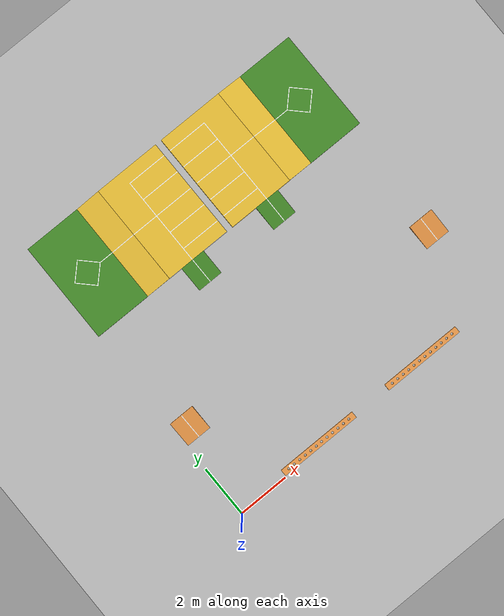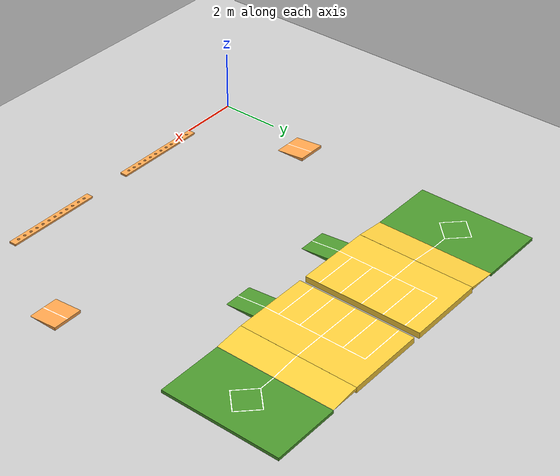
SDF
<sdf version="1.7">
 <world name="default">
  <light name="sun" type="directional">
   <pose>0 0 10 0 -0 0</pose>
   <diffuse>0.8 0.8 0.8 1</diffuse>
   <specular>0.2 0.2 0.2 1</specular>
   <attenuation>
    <range>1000</range>
    <constant>0.9</constant>
    <linear>0.01</linear>
    <quadratic>0.001</quadratic>
   </attenuation>
   <direction>-0.5 0.1 -0.9</direction>
   <spot><inner_angle>0</inner_angle><outer_angle>0</outer_angle><falloff>0</falloff></spot>
  </light>
  <model name="ground_plane">
   <static>1</static>
   <link name="link">
    <collision name="collision">
     <geometry><plane><normal>0 0 1</normal><size>100 100</size></plane></geometry>
     <surface>
      <contact><collide_bitmask>65535</collide_bitmask></contact>
      <friction><ode><mu>100</mu><mu2>50</mu2></ode></friction>
     </surface>
    </collision>
    <visual name="visual">
     <cast_shadows>0</cast_shadows>
     <geometry><plane><normal>0 0 1</normal><size>100 100</size></plane></geometry>
     <material>
      <script><uri>file://media/materials/scripts/gazebo.material</uri><name>Gazebo/Grey</name></script>
     </material>
    </visual>
   </link>
  </model>
  <gravity>0 0 -9.8</gravity>
  <magnetic_field>6e-06 2.3e-05 -4.2e-05</magnetic_field>
  <atmosphere type="adiabatic"/>
  <physics type="ode">
   <max_step_size>0.001</max_step_size>
   <real_time_factor>1</real_time_factor>
   <real_time_update_rate>1000</real_time_update_rate>
  </physics>
  <scene><ambient>0.4 0.4 0.4 1</ambient><background>0.7 0.7 0.7 1</background><shadows>1</shadows></scene>
  <audio><device>default</device></audio>
  <spherical_coordinates>
   <surface_model>EARTH_WGS84</surface_model>
   <latitude_deg>0</latitude_deg>
   <longitude_deg>0</longitude_deg>
   <elevation>0</elevation>
   <heading_deg>0</heading_deg>
  </spherical_coordinates>
  <model name="abu2024_mag">
   <pose>-0.730976 2.47798 0.01 0 -0 0</pose>
   <static>1</static>
   <link name="body">
    <visual name="visual">
     <geometry><mesh><uri>model://abu2024/abu2024_mag/meshes/mag.dae</uri></mesh></geometry>
    </visual>
    <collision name="collision">
     <geometry><mesh><uri>model://abu2024/abu2024_mag/meshes/mag.dae</uri></mesh></geometry>
    </collision>
   </link>
  </model>
  <model name="abu2024_mag_0">
   <pose>4.02034 2.47661 0 0 -0 0</pose>
   <static>1</static>
   <link name="body">
    <visual name="visual">
     <geometry><mesh><uri>model://abu2024/abu2024_mag/meshes/mag.dae</uri></mesh></geometry>
    </visual>
    <collision name="collision">
     <geometry><mesh><uri>model://abu2024/abu2024_mag/meshes/mag.dae</uri></mesh></geometry>
    </collision>
   </link>
  </model>
  <model name="abu2024_slope1">
   <pose>-1.39834 2.43172 0.01 0 -0 0</pose>
   <static>1</static>
   <link name="body">
    <visual name="visual">
     <geometry><mesh><uri>model://abu2024/abu2024_slope1/meshes/slope1.dae</uri></mesh></geometry>
    </visual>
    <collision name="collision">
     <geometry><mesh><uri>model://abu2024/abu2024_slope1/meshes/slope1.dae</uri></mesh></geometry>
    </collision>
   </link>
  </model>
  <model name="abu2024_slope1_0">
   <pose>9.60167 2.43062 0.01 0 -0 0</pose>
   <static>1</static>
   <link name="body">
    <visual name="visual">
     <geometry><mesh><uri>model://abu2024/abu2024_slope1/meshes/slope1.dae</uri></mesh></geometry>
    </visual>
    <collision name="collision">
     <geometry><mesh><uri>model://abu2024/abu2024_slope1/meshes/slope1.dae</uri></mesh></geometry>
    </collision>
   </link>
  </model>
  <model name="abu2024_slope2">
   <pose>2.40099 6.42879 0.11 0 -0 0</pose>
   <static>1</static>
   <link name="body">
    <visual name="visual">
     <geometry><mesh><uri>model://abu2024/abu2024_slope2/meshes/slope2.dae</uri></mesh></geometry>
    </visual>
    <collision name="collision">
     <geometry><mesh><uri>model://abu2024/abu2024_slope2/meshes/slope2.dae</uri></mesh></geometry>
    </collision>
   </link>
  </model>
  <model name="abu2024_slope2_0">
   <pose>5.80171 6.42399 0.11 0 -0 0</pose>
   <static>1</static>
   <link name="body">
    <visual name="visual">
     <geometry><mesh><uri>model://abu2024/abu2024_slope2/meshes/slope2.dae</uri></mesh></geometry>
    </visual>
    <collision name="collision">
     <geometry><mesh><uri>model://abu2024/abu2024_slope2/meshes/slope2.dae</uri></mesh></geometry>
    </collision>
   </link>
  </model>
  <model name="abu2024_300">
   <pose>-8.71434 -1.35508 0 0 -0 0</pose>
   <static>1</static>
   <link name="body">
    <visual name="visual">
     <geometry><mesh><uri>model://abu2024/abu2024_300/meshes/300.dae</uri></mesh></geometry>
    </visual>
    <collision name="collision">
     <geometry><mesh><uri>model://abu2024/abu2024_300/meshes/300.dae</uri></mesh></geometry>
    </collision>
   </link>
  </model>
  <model name="abu2024_300_0">
   <pose>20.8265 21.4171 0.01 0 -0 3.14</pose>
   <static>1</static>
   <link name="body">
    <visual name="visual">
     <geometry><mesh><uri>model://abu2024/abu2024_300/meshes/300.dae</uri></mesh></geometry>
    </visual>
    <collision name="collision">
     <geometry><mesh><uri>model://abu2024/abu2024_300/meshes/300.dae</uri></mesh></geometry>
    </collision>
   </link>
  </model>
  <model name="abu2024_bf302">
   <pose>-18.2067 2.47576 0.01 0 -0 0</pose>
   <static>1</static>
   <link name="body">
    <visual name="visual">
     <geometry><mesh><uri>model://abu2024/abu2024_bf302/meshes/bf302.dae</uri></mesh></geometry>
    </visual>
    <collision name="collision">
     <geometry><mesh><uri>model://abu2024/abu2024_bf302/meshes/bf302.dae</uri></mesh></geometry>
    </collision>
   </link>
  </model>
  <model name="abu2024_slope3_0">
   <pose>19.2543 26.1963 0.01 0 -0 3.14</pose>
   <static>1</static>
   <link name="body">
    <visual name="visual">
     <geometry><mesh><uri>model://abu2024/abu2024_slope3/meshes/slope3.dae</uri></mesh></geometry>
    </visual>
    <collision name="collision">
     <geometry><mesh><uri>model://abu2024/abu2024_slope3/meshes/slope3.dae</uri></mesh></geometry>
    </collision>
   </link>
  </model>
  <model name="abu2024_bf301">
   <pose>-15.3303 2.47124 0.01 0 -0 0</pose>
   <static>1</static>
   <link name="body">
    <visual name="visual">
     <geometry><mesh><uri>model://abu2024/abu2024_bf301/meshes/bf301.dae</uri></mesh></geometry>
    </visual>
    <collision name="collision">
     <geometry><mesh><uri>model://abu2024/abu2024_bf301/meshes/bf301.dae</uri></mesh></geometry>
    </collision>
   </link>
  </model>
  <model name="abu2024_slope3">
   <pose>-7.13305 -6.13255 0.01 0 -0 0</pose>
   <static>1</static>
   <link name="body">
    <visual name="visual">
     <geometry><mesh><uri>model://abu2024/abu2024_slope3/meshes/slope3.dae</uri></mesh></geometry>
    </visual>
    <collision name="collision">
     <geometry><mesh><uri>model://abu2024/abu2024_slope3/meshes/slope3.dae</uri></mesh></geometry>
    </collision>
   </link>
  </model>
 </world>
</sdf>
